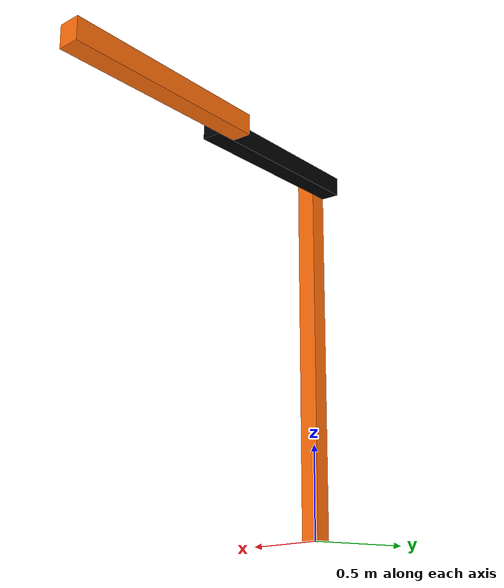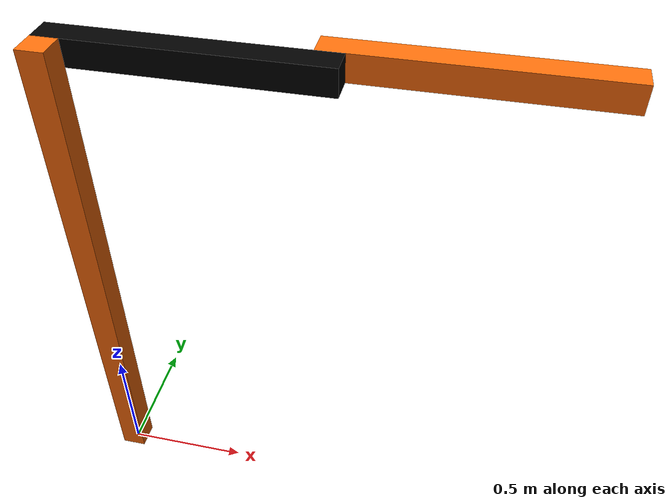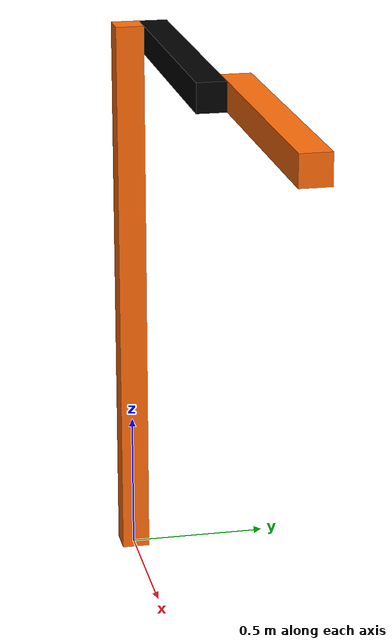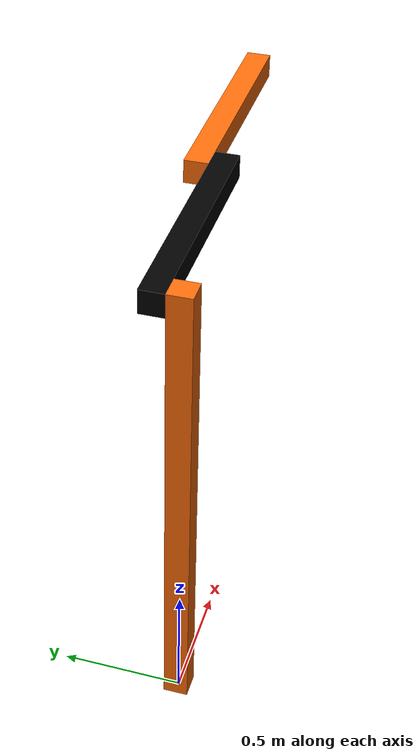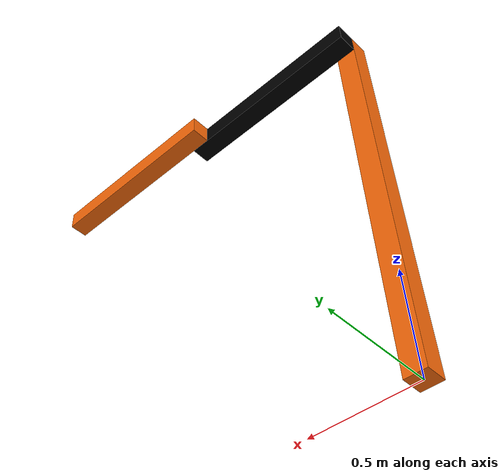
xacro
<?xml version="1.0"?>
<!-- Revolute-Revolute Manipulator -->
<robot name="bot" xmlns:xacro="http://www.ros.org/wiki/xacro">

  <!-- Constants for robot dimensions and mass-->
  <!-- UNITS: height in meters, mass in kg, angles in rad   -->
  <xacro:property name="PI" value="3.1415926535897931"/>
  <xacro:property name="width" value="0.1" /> <!-- Square dimensions (widthxwidth) of beams -->
  <xacro:property name="height" value="2.0" /> <!-- Base link -->
  <xacro:property name="height1" value="1.0" /> <!-- Height Link1 -->
  <xacro:property name="height2" value="1.0" /> <!-- Height Link2 -->
  <xacro:property name="axel_offset" value="0.05" /> <!-- Space btw top of beam and the each joint -->

  <xacro:property name="mass1" value="1" /> <!-- Mass Link1 -->
  <xacro:property name="mass2" value="1" /> <!-- Mass Link2 -->
  <xacro:property name="init_ang1" value="${PI/2}" /> <!-- Initial angle join 1 -->
  <xacro:property name="init_ang2" value="0" /> <!-- Initial angle join 2 -->

  <!-- Import your model behavior in Gazebo -->
  <xacro:include filename="$(find bot_description)/urdf/bot.gazebo" />
  <!-- Import Rviz colors -->
  <xacro:include filename="$(find bot_description)/urdf/materials.xacro" />

  <!-- Used for fixing robot to Gazebo 'base_link' which is attached to a fixed reference frame located at the center of the world environment -->
  <link name="world"/>

  <joint name="fixed" type="fixed">
    <parent link="world"/>
    <child link="baselink"/>
  </joint>

  <!-- Base Link of the robot-->
  <link name="baselink">
    <collision>
      <origin xyz="0 0 ${height/2}" rpy="0 0 0"/>
      <geometry>
  <box size="${width} ${width} ${height}"/>
      </geometry>
    </collision>

    <visual>
      <origin xyz="0 0 ${height/2}" rpy="0 0 0"/>
      <geometry>
  <box size="${width} ${width} ${height}"/>
      </geometry>
      <material name="BOT/orange"/>
    </visual>
    <!-- The inertia matrix values for the base do not affect the movement of the links -->
    <inertial>
      <origin xyz="0 0 ${height/2}" rpy="0 0 0"/>
      <mass value="1"/>
      <inertia
         ixx="1.0" ixy="0.0" ixz="0.0"
                   iyy="1.0" iyz="0.0"
                   izz="1.0"/>
    </inertial>
  </link>

  <joint name="joint1" type="continuous">
    <parent link="baselink"/>
    <child link="link1"/>
    <origin xyz="0 ${width} ${height - axel_offset}" rpy="0 ${init_ang1} 0"/>
    <axis xyz="0 1 0"/>
    <limit effort="100" velocity="1" />
    <dynamics damping="0.1"/>
  </joint>

  <!-- Middle Link -->
  <link name="link1">
    <collision>
      <origin xyz="0 0 ${height1/2 - axel_offset}" rpy="0 0 0"/>
      <geometry>
        <box size="${width} ${width} ${height1}"/>
      </geometry>
    </collision>

    <visual>
      <origin xyz="0 0 ${height1/2 - axel_offset}" rpy="0 0 0"/>
      <geometry>
        <box size="${width} ${width} ${height1}"/>
      </geometry>
      <material name="BOT/black"/>
    </visual>

    <inertial>
      <origin xyz="0 0 ${height1/2 - axel_offset}" rpy="0 0 0"/>
      <mass value="${mass1}"/>
      <inertia
         ixx="${mass1*(width*width + height1*height1)/12}"
         ixy="0.0"
         ixz="0.0"
         iyy="${mass1*(width*width + height1*height1)/12}"
         iyz="0.0"
         izz="${mass1*(width*width + width*width)/12}"/>
    </inertial>
  </link>

  <joint name="joint2" type="continuous">
    <parent link="link1"/>
    <child link="link2"/>
    <origin xyz="0 ${width} ${height1 - axel_offset*2}" rpy="0 ${init_ang2} 0"/>
    <axis xyz="0 1 0"/>
    <limit effort="10" velocity="1" />
    <dynamics damping="0.1"/>
  </joint>

  <!-- Top Link -->
  <link name="link2">
    <collision>
      <origin xyz="0 0 ${height2/2 - axel_offset}" rpy="0 0 0"/>
      <geometry>
        <box size="${width} ${width} ${height2}"/>
      </geometry>
    </collision>

    <visual>
      <origin xyz="0 0 ${height2/2 - axel_offset}" rpy="0 0 0"/>
      <geometry>
        <box size="${width} ${width} ${height2}"/>
      </geometry>
      <material name="BOT/orange"/>
    </visual>

    <inertial>
      <origin xyz="0 0 ${height2/2 - axel_offset}" rpy="0 0 0"/>
      <mass value="${mass2}"/>
      <inertia
         ixx="${mass2*(width*width + height2*height2)/12}"
         ixy="0.0"
         ixz="0.0"
         iyy="${mass2*(width*width + height2*height2)/12}"
         iyz="0.0"
         izz="${mass2*(width*width + width*width)/12}"/>
    </inertial>
  </link>

  <transmission name="tran1">
    <type>transmission_interface/SimpleTransmission</type>
    <joint name="joint1">
      <hardwareInterface>hardware_interface/EffortJointInterface</hardwareInterface>
    </joint>
    <actuator name="motor1">
      <hardwareInterface>hardware_interface/EffortJointInterface</hardwareInterface>
      <mechanicalReduction>1</mechanicalReduction>
    </actuator>
  </transmission>

  <transmission name="tran2">
    <type>transmission_interface/SimpleTransmission</type>
    <joint name="joint2">
      <hardwareInterface>hardware_interface/EffortJointInterface</hardwareInterface>
    </joint>
    <actuator name="motor2">
      <hardwareInterface>hardware_interface/EffortJointInterface</hardwareInterface>
      <mechanicalReduction>1</mechanicalReduction>
    </actuator>
  </transmission>

</robot>

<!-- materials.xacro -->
<robot>

  <material name="BOT/black">
    <color rgba="0.0 0.0 0.0 1.0"/>
  </material>

  <material name="BOT/blue">
    <color rgba="0.0 0.0 0.8 1.0"/>
  </material>

  <material name="BOT/green">
    <color rgba="0.0 0.8 0.0 1.0"/>
  </material>

  <material name="BOT/grey">
    <color rgba="0.2 0.2 0.2 1.0"/>
  </material>

  <material name="BOT/orange">
    <color rgba="${255/255} ${108/255} ${10/255} 1.0"/>
  </material>

  <material name="BOT/brown">
    <color rgba="${222/255} ${207/255} ${195/255} 1.0"/>
  </material>

  <material name="BOT/red">
    <color rgba="0.8 0.0 0.0 1.0"/>
  </material>

  <material name="BOT/white">
    <color rgba="1.0 1.0 1.0 1.0"/>
  </material>

</robot>
